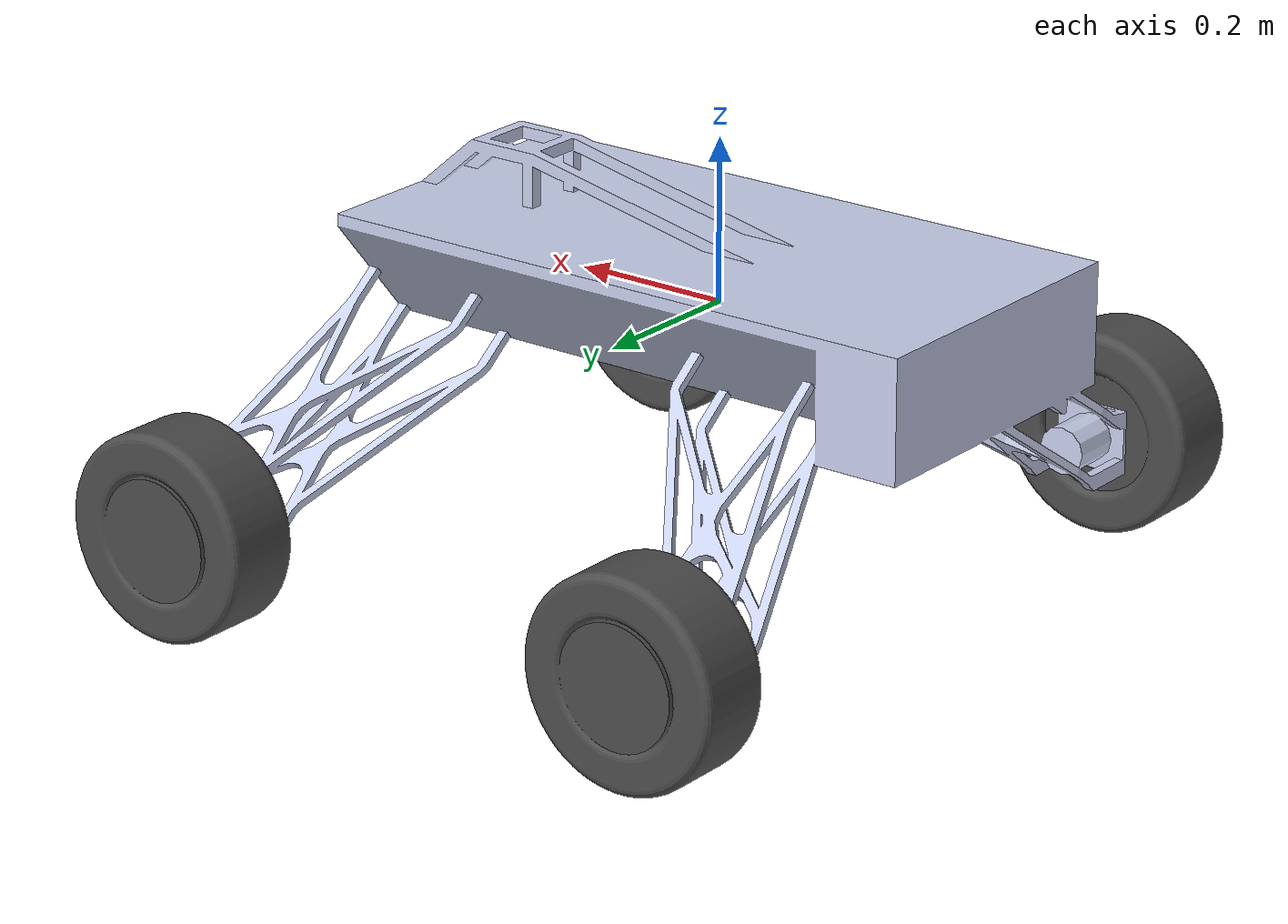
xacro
<?xml version="1.0" encoding="utf-8"?>
<robot xmlns:xacro="http://www.ros.org/wiki/xacro"  name="body">

  <link
    name="base_link">

  </link>

  <link name="chassis_link">
    <inertial>
      <origin
        xyz="0.014675 4.4183E-17 -0.040844"
        rpy="0 0 0" />
      <mass
        value="7" />
      <inertia
        ixx="0.44077"
        ixy="2.0222E-16"
        ixz="0.020835"
        iyy="0.57358"
        iyz="-7.1373E-17"
        izz="0.84637" />
    </inertial>
    <visual>
      <origin
        xyz="0 0 0"
        rpy="0 0 0" />
      <geometry>
        <mesh
          filename="file://$(find rover_description)/meshes/chassis_link.STL" />
      </geometry>
      <material
        name="">
        <color
          rgba="0.79216 0.81961 0.93333 1" />
      </material>
    </visual>
    <collision>
      <origin
        xyz="0 0 0"
        rpy="0 0 0" />
      <geometry>
        <mesh
          filename="file://$(find rover_description)/meshes/chassis_link.STL" />
      </geometry>
    </collision>
  </link>

  <gazebo reference="chassis_link">
        <material>Gazebo/White</material>
  </gazebo>

  <joint name="chassis_joint" type="fixed">
    <parent link="base_link" />
    <child link="chassis_link" />
    <origin xyz="0 0 0" />
  </joint>

  <link
    name="front_right_wheel_link">
    <inertial>
      <origin
        xyz="0.0146753114930385 4.4183075589603E-17 -0.0408444702966285"
        rpy="0 0 0" />
      <mass
        value="1" />
      <inertia
        ixx="0.440773403043026"
        ixy="2.0222253827549E-16"
        ixz="0.0208345815304579"
        iyy="0.57357932783604"
        iyz="-7.13726605678202E-17"
        izz="0.846373788852003" />
    </inertial>
    <visual>
      <origin
        xyz="0 0 0"
        rpy="0 0 0" />
      <geometry>
        <mesh
          filename="file://$(find rover_description)/meshes/front_right_wheel_link.STL" />
      </geometry>
      <material
        name="">
        <color
          rgba="0.298039215686275 0.298039215686275 0.298039215686275 1" />
      </material>
    </visual>
    <collision>
      <origin
        xyz="0 0 0"
        rpy="0 0 0" />
      <geometry>
        <mesh
          filename="file://$(find rover_description)/meshes/front_right_wheel_link.STL" />
      </geometry>
    </collision>
  </link>

  <gazebo reference="front_right_wheel_link">
        <material>Gazebo/Gray</material>
  </gazebo>

  <joint
    name="front_right_wheel_joint"
    type="continuous">
    <origin
      xyz="0.42117 -0.47112 -0.23635"
      rpy="0 0 0" />
    <parent
      link="base_link" />
    <child
      link="front_right_wheel_link" />
    <axis
      xyz="0 1 0" />
  </joint>

  <link
    name="rear_right_wheel_link">
    <inertial>
      <origin
        xyz="0.0146753114930385 4.4183075589603E-17 -0.0408444702966285"
        rpy="0 0 0" />
      <mass
        value="1" />
      <inertia
        ixx="0.440773403043026"
        ixy="2.0222253827549E-16"
        ixz="0.0208345815304579"
        iyy="0.57357932783604"
        iyz="-7.13726605678202E-17"
        izz="0.846373788852003" />
    </inertial>
    <visual>
      <origin
        xyz="0 0 0"
        rpy="0 0 0" />
      <geometry>
        <mesh
          filename="file://$(find rover_description)/meshes/rear_right_wheel_link.STL" />
      </geometry>
      <material
        name="">
        <color
          rgba="0.298039215686275 0.298039215686275 0.298039215686275 1" />
      </material>
    </visual>
    <collision>
      <origin
        xyz="0 0 0"
        rpy="0 0 0" />
      <geometry>
        <mesh
          filename="file://$(find rover_description)/meshes/rear_right_wheel_link.STL" />
      </geometry>
    </collision>
  </link>

  <gazebo reference="rear_right_wheel_link">
        <material>Gazebo/Gray</material>
  </gazebo>

  <joint
    name="rear_right_wheel_joint"
    type="continuous">
    <origin
      xyz="-0.25063 -0.47112 -0.23635"
      rpy="0 0 0" />
    <parent
      link="base_link" />
    <child
      link="rear_right_wheel_link" />
    <axis
      xyz="0 1 0" />
  </joint>
  <link
    name="front_left_wheel_link">
    <inertial>
      <origin
        xyz="0.0146753114930385 4.4183075589603E-17 -0.0408444702966285"
        rpy="0 0 0" />
      <mass
        value="1" />
      <inertia
        ixx="0.440773403043026"
        ixy="2.0222253827549E-16"
        ixz="0.0208345815304579"
        iyy="0.57357932783604"
        iyz="-7.13726605678202E-17"
        izz="0.846373788852003" />
    </inertial>
    <visual>
      <origin
        xyz="0 0 0"
        rpy="0 0 0" />
      <geometry>
        <mesh
          filename="file://$(find rover_description)/meshes/front_left_wheel_link.STL" />
      </geometry>
      <material
        name="">
        <color
          rgba="0.298039215686275 0.298039215686275 0.298039215686275 1" />
      </material>
    </visual>
    <collision>
      <origin
        xyz="0 0 0"
        rpy="0 0 0" />
      <geometry>
        <mesh
          filename="file://$(find rover_description)/meshes/front_left_wheel_link.STL" />
      </geometry>
    </collision>
  </link>

  <gazebo reference="front_left_wheel_link">
        <material>Gazebo/Gray</material>
  </gazebo>

  <joint
    name="front_left_wheel_joint"
    type="continuous">
    <origin
      xyz="0.42117 0.47112 -0.23635"
      rpy="0 0 0" />
    <parent
      link="base_link" />
    <child
      link="front_left_wheel_link" />
    <axis
      xyz="0 1 0" />
  </joint>
  <link
    name="rear_left_wheel_link">
    <inertial>
      <origin
        xyz="0.0146753114930385 4.4183075589603E-17 -0.0408444702966285"
        rpy="0 0 0" />
      <mass
        value="1" />
      <inertia
        ixx="0.440773403043026"
        ixy="2.0222253827549E-16"
        ixz="0.0208345815304579"
        iyy="0.57357932783604"
        iyz="-7.13726605678202E-17"
        izz="0.846373788852003" />
    </inertial>
    <visual>
      <origin
        xyz="0 0 0"
        rpy="0 0 0" />
      <geometry>
        <mesh
          filename="file://$(find rover_description)/meshes/rear_left_wheel_link.STL" />
      </geometry>
      <material
        name="">
        <color
          rgba="0.298039215686275 0.298039215686275 0.298039215686275 1" />
      </material>
    </visual>
    <collision>
      <origin
        xyz="0 0 0"
        rpy="0 0 0" />
      <geometry>
        <mesh
          filename="file://$(find rover_description)/meshes/rear_left_wheel_link.STL" />
      </geometry>
    </collision>
  </link>

  <gazebo reference="rear_left_wheel_link">
        <material>Gazebo/Gray</material>
  </gazebo>

  <joint
    name="rear_left_wheel_joint"
    type="continuous">
    <origin
      xyz="-0.25063 0.47112 -0.23635"
      rpy="0 0 0" />
    <parent
      link="base_link" />
    <child
      link="rear_left_wheel_link" />
    <axis
      xyz="0 1 0" />
  </joint>

</robot>
